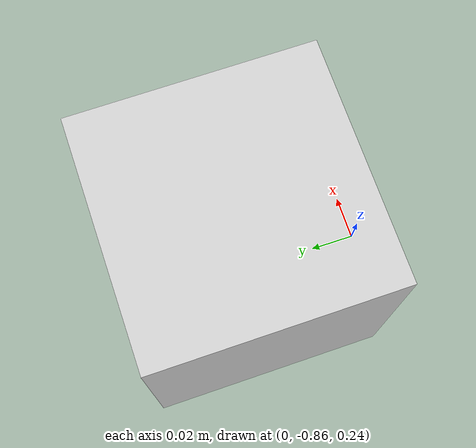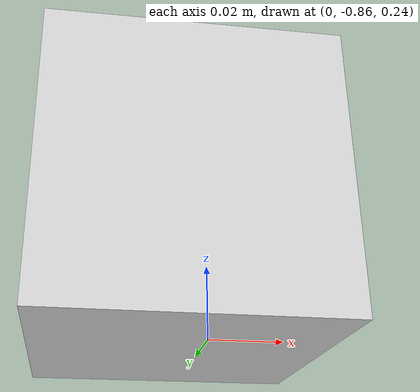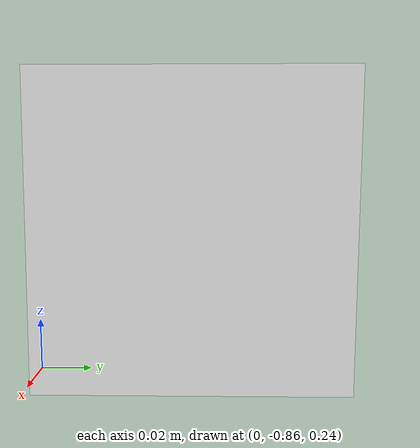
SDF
<?xml version="1.0" ?>
<sdf version="1.6">
  <model name="depth_camera">
    <static>true</static>

    <!-- Camera link -->
    <link name="camera_link">
      <visual name="visual">
        <geometry>
          <box>
            <size>0.1 0.1 0.1</size>
          </box>
        </geometry>
        <material>
          <ambient>0.8 0.8 0.8 1</ambient>
          <diffuse>0.8 0.8 0.8 1</diffuse>
          <specular>0.2 0.2 0.2 1</specular>
        </material>
      </visual>

      <collision name="collision">
        <geometry>
          <box>
            <size>0.1 0.1 0.1</size>
          </box>
        </geometry>
      </collision>

      <inertial>
        <mass>0.1</mass>
        <inertia>
          <ixx>0.000166667</ixx>
          <ixy>0</ixy>
          <ixz>0</ixz>
          <iyy>0.000166667</iyy>
          <iyz>0</iyz>
          <izz>0.000166667</izz>
        </inertia>
      </inertial>

      <!-- RGB Camera sensor -->
      <sensor type="camera" name="rgb_camera">
        <update_rate>30</update_rate>
        <camera>
          <horizontal_fov>1.047</horizontal_fov>
          <image>
            <width>640</width>
            <height>480</height>
            <format>B8G8R8</format>
          </image>
          <clip>
            <near>0.1</near>
            <far>10.0</far>
          </clip>
        </camera>
      </sensor>

      <!-- Depth Camera sensor -->
      <sensor type="depth" name="depth_camera">
        <update_rate>30</update_rate>
        <camera>
          <horizontal_fov>1.047</horizontal_fov>
          <image>
            <width>640</width>
            <height>480</height>
            <format>R_FLOAT32</format>
          </image>
          <clip>
            <near>0.1</near>
            <far>10.0</far>
          </clip>
        </camera>
      </sensor>
    </link>

    <!-- Position the camera to the left of the robot, facing right -->
    <pose>0.0 -0.8 0.3 0 0 0</pose>
  </model>
</sdf>
